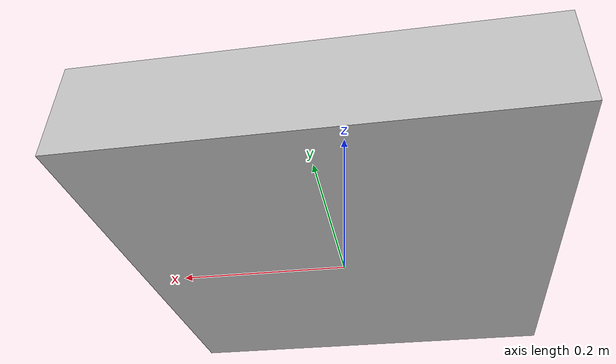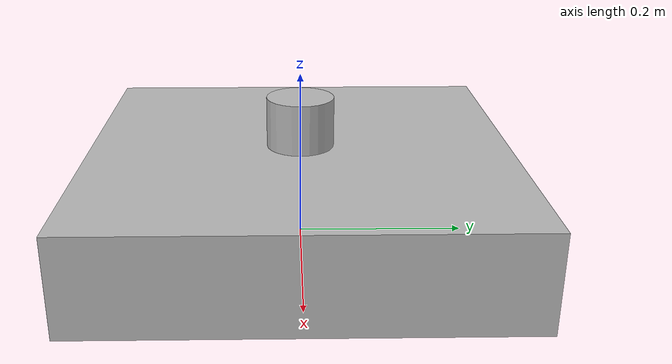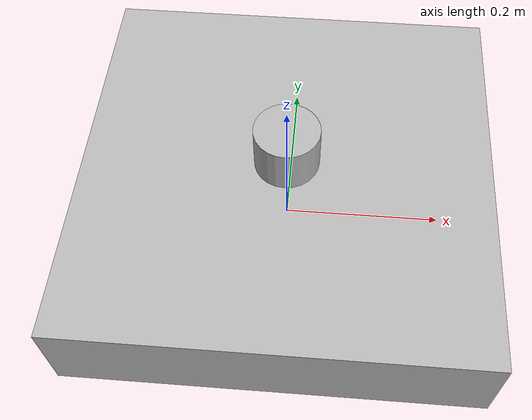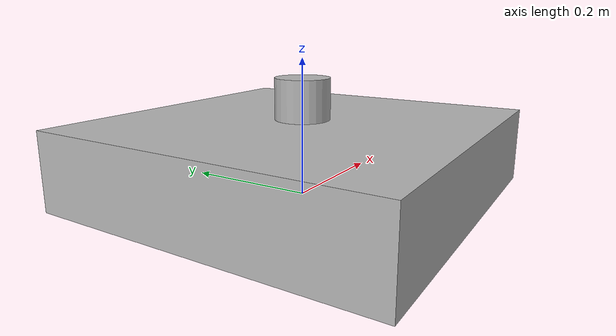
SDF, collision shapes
<sdf version='1.6'>
  <model name='asymmetric_quadrotor'>
    <link name='delta/base_link'>
      <pose frame=''>0 0 0 0 -0 0</pose>
      <inertial>
        <pose frame=''>0 0 0 0 -0 0</pose>
        <mass>0.5</mass>
        <inertia>
          <ixx>0.0102411</ixx>
          <ixy>0</ixy>
          <ixz>0</ixz>
          <iyy>0.0102411</iyy>
          <iyz>0</iyz>
          <izz>0.020264</izz>
        </inertia>
      </inertial>
      <collision name='delta/base_link_fixed_joint_lump__delta_collision_collision'>
        <pose frame=''>0 0 0.0565 0 -0 0</pose>
        <geometry>
          <box>
            <size>0.5 0.5 0.113</size>
          </box>
        </geometry>
      </collision>
      <collision name='delta/base_link_fixed_joint_lump__base_collision_collision_1'>
        <pose frame=''>0 0 0.1365 0 -0 0</pose>
        <geometry>
          <cylinder>
            <length>0.073</length>
            <radius>0.04</radius>
          </cylinder>
        </geometry>
      </collision>
      <visual name='delta/base_link_inertia_visual'>
        <pose frame=''>0 0 0 0 -0 0</pose>
        <geometry>
          <mesh>
            <scale>1 1 1</scale>
            <uri>model://rmf_sim/rotors/meshes/delta/delta.dae</uri>
          </mesh>
        </geometry>
      </visual>
      <visual name='delta/base_link_fixed_joint_lump__base_visual_visual_1'>
        <pose frame=''>0 0 0.1 0 -0 1.5707</pose>
        <geometry>
          <mesh>
            <scale>1 1 1</scale>
            <uri>model://lidar_description/meshes/Ouster/ouster.dae</uri>
          </mesh>
        </geometry>
      </visual>
      <velocity_decay/>
      <sensor name='delta_contact_sensor' type='contact'>
        <always_on>1</always_on>
        <contact>
          <collision>delta/base_link_fixed_joint_lump__delta_collision_collision</collision>
          <topic>__default_topic__</topic>
        </contact>
        <plugin name='delta_collision_plugin' filename='libgazebo_ros_bumper.so'>
          <bumperTopicName>delta_contact</bumperTopicName>
          <frameName>world</frameName>
        </plugin>
        <pose frame=''>0 0 0 0 -0 0</pose>
      </sensor>
      <velocity_decay/>
      <sensor name='delta/os1-OS1-64' type='ray'>
        <visualize>0</visualize>
        <update_rate>10</update_rate>
        <ray>
          <scan>
            <horizontal>
              <samples>220</samples>
              <resolution>1</resolution>
              <min_angle>-3.14159</min_angle>
              <max_angle>3.14159</max_angle>
            </horizontal>
            <vertical>
              <samples>64</samples>
              <resolution>1</resolution>
              <min_angle>-0.289917</min_angle>
              <max_angle>0.289917</max_angle>
            </vertical>
          </scan>
          <range>
            <min>0.225</min>
            <max>100</max>
            <resolution>0.03</resolution>
          </range>
        </ray>
        <plugin name='gazebo_ros_laser_controller' filename='libgazebo_ros_lidar.so'>
          <topicName>/os1_points</topicName>
          <frameName>delta/os1</frameName>
          <min_range>0.225</min_range>
          <max_range>100.0</max_range>
          <gaussianNoise>0.008</gaussianNoise>
        </plugin>
        <pose frame=''>0 0 0.1 0 -0 0</pose>
      </sensor>
      <gravity>1</gravity>
      <velocity_decay/>
    </link>
    <link name='delta/imu_link'>
      <pose frame=''>0 0 0 0 -0 0</pose>
      <inertial>
        <pose frame=''>0 0 0 0 -0 0</pose>
        <mass>0.015</mass>
        <inertia>
          <ixx>1e-05</ixx>
          <ixy>0</ixy>
          <ixz>0</ixz>
          <iyy>1e-05</iyy>
          <iyz>0</iyz>
          <izz>1e-05</izz>
        </inertia>
      </inertial>
    </link>
    <joint name='delta/imu_joint' type='revolute'>
      <child>delta/imu_link</child>
      <parent>delta/base_link</parent>
      <axis>
        <xyz>1 0 0</xyz>
        <limit>
          <lower>0</lower>
          <upper>0</upper>
          <effort>0</effort>
          <velocity>0</velocity>
        </limit>
        <dynamics>
          <spring_reference>0</spring_reference>
          <spring_stiffness>0</spring_stiffness>
        </dynamics>
        <use_parent_model_frame>1</use_parent_model_frame>
      </axis>
    </joint>
    <link name='delta/imugt_link'>
      <pose frame=''>0 0 0 0 -0 0</pose>
      <inertial>
        <pose frame=''>0 0 0 0 -0 0</pose>
        <mass>1e-05</mass>
        <inertia>
          <ixx>1e-05</ixx>
          <ixy>0</ixy>
          <ixz>0</ixz>
          <iyy>1e-05</iyy>
          <iyz>0</iyz>
          <izz>1e-05</izz>
        </inertia>
      </inertial>
    </link>
    <joint name='delta/imugt_joint' type='revolute'>
      <child>delta/imugt_link</child>
      <parent>delta/base_link</parent>
      <axis>
        <xyz>1 0 0</xyz>
        <limit>
          <lower>0</lower>
          <upper>0</upper>
          <effort>0</effort>
          <velocity>0</velocity>
        </limit>
        <dynamics>
          <spring_reference>0</spring_reference>
          <spring_stiffness>0</spring_stiffness>
        </dynamics>
        <use_parent_model_frame>1</use_parent_model_frame>
      </axis>
    </joint>
    <link name='delta/odometry_sensor1_link'>
      <pose frame=''>0 0 0 0 -0 0</pose>
      <inertial>
        <pose frame=''>0 0 0 0 -0 0</pose>
        <mass>1e-05</mass>
        <inertia>
          <ixx>1e-05</ixx>
          <ixy>0</ixy>
          <ixz>0</ixz>
          <iyy>1e-05</iyy>
          <iyz>0</iyz>
          <izz>1e-05</izz>
        </inertia>
      </inertial>
    </link>
    <joint name='delta/odometry_sensor1_joint' type='revolute'>
      <child>delta/odometry_sensor1_link</child>
      <parent>delta/base_link</parent>
      <axis>
        <xyz>1 0 0</xyz>
        <limit>
          <lower>0</lower>
          <upper>0</upper>
          <effort>0</effort>
          <velocity>0</velocity>
        </limit>
        <dynamics>
          <spring_reference>0</spring_reference>
          <spring_stiffness>0</spring_stiffness>
        </dynamics>
        <use_parent_model_frame>1</use_parent_model_frame>
      </axis>
    </joint>
    <link name='delta/odometry_sensorgt_link'>
      <pose frame=''>0 0 0 0 -0 0</pose>
      <inertial>
        <pose frame=''>0 0 0 0 -0 0</pose>
        <mass>1e-05</mass>
        <inertia>
          <ixx>1e-05</ixx>
          <ixy>0</ixy>
          <ixz>0</ixz>
          <iyy>1e-05</iyy>
          <iyz>0</iyz>
          <izz>1e-05</izz>
        </inertia>
      </inertial>
    </link>
    <joint name='delta/odometry_sensorgt_joint' type='revolute'>
      <child>delta/odometry_sensorgt_link</child>
      <parent>delta/base_link</parent>
      <axis>
        <xyz>1 0 0</xyz>
        <limit>
          <lower>0</lower>
          <upper>0</upper>
          <effort>0</effort>
          <velocity>0</velocity>
        </limit>
        <dynamics>
          <spring_reference>0</spring_reference>
          <spring_stiffness>0</spring_stiffness>
        </dynamics>
        <use_parent_model_frame>1</use_parent_model_frame>
      </axis>
    </joint>
    <link name='delta/rotor_0'>
      <pose frame=''>0.07 -0.075 0.027 0 -0 0</pose>
      <inertial>
        <pose frame=''>0 0 0 0 -0 0</pose>
        <mass>0.003</mass>
        <inertia>
          <ixx>5.85e-07</ixx>
          <ixy>0</ixy>
          <ixz>0</ixz>
          <iyy>7.045e-06</iyy>
          <iyz>0</iyz>
          <izz>7.585e-06</izz>
        </inertia>
      </inertial>
      <collision name='delta/rotor_0_collision'>
        <pose frame=''>0 0 0 0 -0 0</pose>
        <geometry>
          <cylinder>
            <length>0.005</length>
            <radius>0.053</radius>
          </cylinder>
        </geometry>
        <surface>
          <contact>
            <ode/>
          </contact>
          <friction>
            <ode/>
          </friction>
        </surface>
      </collision>
      <visual name='delta/rotor_0_visual'>
        <pose frame=''>0 0 0 0 -0 0</pose>
        <geometry>
          <mesh>
            <scale>0.053 0.053 0.053</scale>
            <uri>model://rotors_description/meshes/propeller_ccw.dae</uri>
          </mesh>
        </geometry>
        <material>
          <script>
            <name>Gazebo/Red</name>
            <uri>file://media/materials/scripts/gazebo.material</uri>
          </script>
        </material>
      </visual>
      <gravity>1</gravity>
      <velocity_decay/>
    </link>
    <joint name='delta/rotor_0_joint' type='revolute'>
      <child>delta/rotor_0</child>
      <parent>delta/base_link</parent>
      <axis>
        <xyz>0 0 1</xyz>
        <limit>
          <lower>-1e+16</lower>
          <upper>1e+16</upper>
        </limit>
        <dynamics>
          <spring_reference>0</spring_reference>
          <spring_stiffness>0</spring_stiffness>
        </dynamics>
        <use_parent_model_frame>1</use_parent_model_frame>
      </axis>
    </joint>
    <link name='delta/rotor_1'>
      <pose frame=''>-0.06631 0.075627 0.027 0 -0 0</pose>
      <inertial>
        <pose frame=''>0 0 0 0 -0 0</pose>
        <mass>0.003</mass>
        <inertia>
          <ixx>5.85e-07</ixx>
          <ixy>0</ixy>
          <ixz>0</ixz>
          <iyy>7.045e-06</iyy>
          <iyz>0</iyz>
          <izz>7.585e-06</izz>
        </inertia>
      </inertial>
      <collision name='delta/rotor_1_collision'>
        <pose frame=''>0 0 0 0 -0 0</pose>
        <geometry>
          <cylinder>
            <length>0.005</length>
            <radius>0.053</radius>
          </cylinder>
        </geometry>
        <surface>
          <contact>
            <ode/>
          </contact>
          <friction>
            <ode/>
          </friction>
        </surface>
      </collision>
      <visual name='delta/rotor_1_visual'>
        <pose frame=''>0 0 0 0 -0 0</pose>
        <geometry>
          <mesh>
            <scale>0.053 0.053 0.053</scale>
            <uri>model://rotors_description/meshes/propeller_ccw.dae</uri>
          </mesh>
        </geometry>
        <material>
          <script>
            <name>Gazebo/Blue</name>
            <uri>file://media/materials/scripts/gazebo.material</uri>
          </script>
        </material>
      </visual>
      <gravity>1</gravity>
      <velocity_decay/>
    </link>
    <joint name='delta/rotor_1_joint' type='revolute'>
      <child>delta/rotor_1</child>
      <parent>delta/base_link</parent>
      <axis>
        <xyz>0 0 1</xyz>
        <limit>
          <lower>-1e+16</lower>
          <upper>1e+16</upper>
        </limit>
        <dynamics>
          <spring_reference>0</spring_reference>
          <spring_stiffness>0</spring_stiffness>
        </dynamics>
        <use_parent_model_frame>1</use_parent_model_frame>
      </axis>
    </joint>
    <link name='delta/rotor_2'>
      <pose frame=''>0.07 0.075 0.027 0 -0 0</pose>
      <inertial>
        <pose frame=''>0 0 0 0 -0 0</pose>
        <mass>0.003</mass>
        <inertia>
          <ixx>5.85e-07</ixx>
          <ixy>0</ixy>
          <ixz>0</ixz>
          <iyy>7.045e-06</iyy>
          <iyz>0</iyz>
          <izz>7.585e-06</izz>
        </inertia>
      </inertial>
      <collision name='delta/rotor_2_collision'>
        <pose frame=''>0 0 0 0 -0 0</pose>
        <geometry>
          <cylinder>
            <length>0.005</length>
            <radius>0.053</radius>
          </cylinder>
        </geometry>
        <surface>
          <contact>
            <ode/>
          </contact>
          <friction>
            <ode/>
          </friction>
        </surface>
      </collision>
      <visual name='delta/rotor_2_visual'>
        <pose frame=''>0 0 0 0 -0 0</pose>
        <geometry>
          <mesh>
            <scale>0.053 0.053 0.053</scale>
            <uri>model://rotors_description/meshes/propeller_cw.dae</uri>
          </mesh>
        </geometry>
        <material>
          <script>
            <name>Gazebo/Red</name>
            <uri>file://media/materials/scripts/gazebo.material</uri>
          </script>
        </material>
      </visual>
      <gravity>1</gravity>
      <velocity_decay/>
    </link>
    <joint name='delta/rotor_2_joint' type='revolute'>
      <child>delta/rotor_2</child>
      <parent>delta/base_link</parent>
      <axis>
        <xyz>0 0 1</xyz>
        <limit>
          <lower>-1e+16</lower>
          <upper>1e+16</upper>
        </limit>
        <dynamics>
          <spring_reference>0</spring_reference>
          <spring_stiffness>0</spring_stiffness>
        </dynamics>
        <use_parent_model_frame>1</use_parent_model_frame>
      </axis>
    </joint>
    <link name='delta/rotor_3'>
      <pose frame=''>-0.07 -0.075 0.027 0 -0 0</pose>
      <inertial>
        <pose frame=''>0 0 0 0 -0 0</pose>
        <mass>0.003</mass>
        <inertia>
          <ixx>5.85e-07</ixx>
          <ixy>0</ixy>
          <ixz>0</ixz>
          <iyy>7.045e-06</iyy>
          <iyz>0</iyz>
          <izz>7.585e-06</izz>
        </inertia>
      </inertial>
      <collision name='delta/rotor_3_collision'>
        <pose frame=''>0 0 0 0 -0 0</pose>
        <geometry>
          <cylinder>
            <length>0.005</length>
            <radius>0.053</radius>
          </cylinder>
        </geometry>
        <surface>
          <contact>
            <ode/>
          </contact>
          <friction>
            <ode/>
          </friction>
        </surface>
      </collision>
      <visual name='delta/rotor_3_visual'>
        <pose frame=''>0 0 0 0 -0 0</pose>
        <geometry>
          <mesh>
            <scale>0.053 0.053 0.053</scale>
            <uri>model://rotors_description/meshes/propeller_cw.dae</uri>
          </mesh>
        </geometry>
        <material>
          <script>
            <name>Gazebo/Blue</name>
            <uri>file://media/materials/scripts/gazebo.material</uri>
          </script>
        </material>
      </visual>
      <gravity>1</gravity>
      <velocity_decay/>
    </link>
    <joint name='delta/rotor_3_joint' type='revolute'>
      <child>delta/rotor_3</child>
      <parent>delta/base_link</parent>
      <axis>
        <xyz>0 0 1</xyz>
        <limit>
          <lower>-1e+16</lower>
          <upper>1e+16</upper>
        </limit>
        <dynamics>
          <spring_reference>0</spring_reference>
          <spring_stiffness>0</spring_stiffness>
        </dynamics>
        <use_parent_model_frame>1</use_parent_model_frame>
      </axis>
    </joint>
    <plugin name='multirotor_base_plugin' filename='librotors_gazebo_multirotor_base_plugin.so'>
      <robotNamespace>delta</robotNamespace>
      <linkName>delta/base_link</linkName>
      <rotorVelocitySlowdownSim>10</rotorVelocitySlowdownSim>
    </plugin>
    <plugin name='delta_front_right_motor_model' filename='librotors_gazebo_motor_model.so'>
      <robotNamespace>delta</robotNamespace>
      <jointName>delta/rotor_0_joint</jointName>
      <linkName>delta/rotor_0</linkName>
      <turningDirection>ccw</turningDirection>
      <timeConstantUp>0.0125</timeConstantUp>
      <timeConstantDown>0.025</timeConstantDown>
      <maxRotVelocity>2000.0</maxRotVelocity>
      <motorConstant>0.02246</motorConstant>
      <momentConstant>0.016</momentConstant>
      <commandSubTopic>gazebo/command/motor_speed</commandSubTopic>
      <motorNumber>0</motorNumber>
      <rotorDragCoefficient>8.06428e-05</rotorDragCoefficient>
      <rollingMomentCoefficient>1e-06</rollingMomentCoefficient>
      <motorSpeedPubTopic>motor_speed/0</motorSpeedPubTopic>
      <rotorVelocitySlowdownSim>10</rotorVelocitySlowdownSim>
    </plugin>
    <plugin name='delta_front_left_motor_model' filename='librotors_gazebo_motor_model.so'>
      <robotNamespace>delta</robotNamespace>
      <jointName>delta/rotor_2_joint</jointName>
      <linkName>delta/rotor_2</linkName>
      <turningDirection>cw</turningDirection>
      <timeConstantUp>0.0125</timeConstantUp>
      <timeConstantDown>0.025</timeConstantDown>
      <maxRotVelocity>2000.0</maxRotVelocity>
      <motorConstant>0.02246</motorConstant>
      <momentConstant>0.016</momentConstant>
      <commandSubTopic>gazebo/command/motor_speed</commandSubTopic>
      <motorNumber>2</motorNumber>
      <rotorDragCoefficient>8.06428e-05</rotorDragCoefficient>
      <rollingMomentCoefficient>1e-06</rollingMomentCoefficient>
      <motorSpeedPubTopic>motor_speed/2</motorSpeedPubTopic>
      <rotorVelocitySlowdownSim>10</rotorVelocitySlowdownSim>
    </plugin>
    <plugin name='delta_back_left_motor_model' filename='librotors_gazebo_motor_model.so'>
      <robotNamespace>delta</robotNamespace>
      <jointName>delta/rotor_1_joint</jointName>
      <linkName>delta/rotor_1</linkName>
      <turningDirection>ccw</turningDirection>
      <timeConstantUp>0.0125</timeConstantUp>
      <timeConstantDown>0.025</timeConstantDown>
      <maxRotVelocity>2000.0</maxRotVelocity>
      <motorConstant>0.02246</motorConstant>
      <momentConstant>0.016</momentConstant>
      <commandSubTopic>gazebo/command/motor_speed</commandSubTopic>
      <motorNumber>1</motorNumber>
      <rotorDragCoefficient>8.06428e-05</rotorDragCoefficient>
      <rollingMomentCoefficient>1e-06</rollingMomentCoefficient>
      <motorSpeedPubTopic>motor_speed/1</motorSpeedPubTopic>
      <rotorVelocitySlowdownSim>10</rotorVelocitySlowdownSim>
    </plugin>
    <plugin name='delta_back_right_motor_model' filename='librotors_gazebo_motor_model.so'>
      <robotNamespace>delta</robotNamespace>
      <jointName>delta/rotor_3_joint</jointName>
      <linkName>delta/rotor_3</linkName>
      <turningDirection>cw</turningDirection>
      <timeConstantUp>0.0125</timeConstantUp>
      <timeConstantDown>0.025</timeConstantDown>
      <maxRotVelocity>2000.0</maxRotVelocity>
      <motorConstant>0.02246</motorConstant>
      <momentConstant>0.016</momentConstant>
      <commandSubTopic>gazebo/command/motor_speed</commandSubTopic>
      <motorNumber>3</motorNumber>
      <rotorDragCoefficient>8.06428e-05</rotorDragCoefficient>
      <rollingMomentCoefficient>1e-06</rollingMomentCoefficient>
      <motorSpeedPubTopic>motor_speed/3</motorSpeedPubTopic>
      <rotorVelocitySlowdownSim>10</rotorVelocitySlowdownSim>
    </plugin>
    <plugin name='controller_interface' filename='librotors_gazebo_controller_interface.so'>
      <robotNamespace>delta</robotNamespace>
      <commandAttitudeThrustSubTopic>command/attitude</commandAttitudeThrustSubTopic>
      <commandRateThrustSubTopic>command/rate</commandRateThrustSubTopic>
      <commandMotorSpeedSubTopic>command/motor_speed</commandMotorSpeedSubTopic>
      <imuSubTopic>imu</imuSubTopic>
      <motorSpeedCommandPubTopic>gazebo/command/motor_speed</motorSpeedCommandPubTopic>
    </plugin>
    <plugin name='rotors_gazebo_imu_plugin' filename='librotors_gazebo_imu_plugin.so'>
      <robotNamespace>delta</robotNamespace>
      <linkName>delta/imu_link</linkName>
      <imuTopic>imu</imuTopic>
      <gyroscopeNoiseDensity>0.0003394</gyroscopeNoiseDensity>
      <gyroscopeRandomWalk>3.8785e-05</gyroscopeRandomWalk>
      <gyroscopeBiasCorrelationTime>1000.0</gyroscopeBiasCorrelationTime>
      <gyroscopeTurnOnBiasSigma>0.0087</gyroscopeTurnOnBiasSigma>
      <accelerometerNoiseDensity>0.004</accelerometerNoiseDensity>
      <accelerometerRandomWalk>0.006</accelerometerRandomWalk>
      <accelerometerBiasCorrelationTime>300.0</accelerometerBiasCorrelationTime>
      <accelerometerTurnOnBiasSigma>0.196</accelerometerTurnOnBiasSigma>
    </plugin>
    <plugin name='rotors_gazebo_imugt_plugin' filename='librotors_gazebo_imu_plugin.so'>
      <robotNamespace>delta</robotNamespace>
      <linkName>delta/imugt_link</linkName>
      <imuTopic>ground_truth/imu</imuTopic>
      <gyroscopeNoiseDensity>0.0</gyroscopeNoiseDensity>
      <gyroscopeRandomWalk>0.0</gyroscopeRandomWalk>
      <gyroscopeBiasCorrelationTime>1000.0</gyroscopeBiasCorrelationTime>
      <gyroscopeTurnOnBiasSigma>0.0</gyroscopeTurnOnBiasSigma>
      <accelerometerNoiseDensity>0.0</accelerometerNoiseDensity>
      <accelerometerRandomWalk>0.0</accelerometerRandomWalk>
      <accelerometerBiasCorrelationTime>300.0</accelerometerBiasCorrelationTime>
      <accelerometerTurnOnBiasSigma>0.0</accelerometerTurnOnBiasSigma>
    </plugin>
    <plugin name='odometry_sensorgt' filename='librotors_gazebo_odometry_plugin.so'>
      <linkName>delta/odometry_sensorgt_link</linkName>
      <robotNamespace>delta</robotNamespace>
      <poseTopic>ground_truth/pose</poseTopic>
      <poseWithCovarianceTopic>ground_truth/pose_with_covariance</poseWithCovarianceTopic>
      <positionTopic>ground_truth/position</positionTopic>
      <transformTopic>ground_truth/transform</transformTopic>
      <odometryTopic>ground_truth/odometry</odometryTopic>
      <parentFrameId>world</parentFrameId>
      <childFrameId>delta/base_link</childFrameId>
      <measurementDivisor>1</measurementDivisor>
      <measurementDelay>0</measurementDelay>
      <unknownDelay>0.0</unknownDelay>
      <noiseNormalPosition>0 0 0</noiseNormalPosition>
      <noiseNormalQuaternion>0 0 0</noiseNormalQuaternion>
      <noiseNormalLinearVelocity>0 0 0</noiseNormalLinearVelocity>
      <noiseNormalAngularVelocity>0 0 0</noiseNormalAngularVelocity>
      <noiseUniformPosition>0 0 0</noiseUniformPosition>
      <noiseUniformQuaternion>0 0 0</noiseUniformQuaternion>
      <noiseUniformLinearVelocity>0 0 0</noiseUniformLinearVelocity>
      <noiseUniformAngularVelocity>0 0 0</noiseUniformAngularVelocity>
    </plugin>
    <plugin name='odometry_sensor1' filename='librotors_gazebo_odometry_plugin.so'>
      <linkName>delta/odometry_sensor1_link</linkName>
      <robotNamespace>delta</robotNamespace>
      <poseTopic>odometry_sensor1/pose</poseTopic>
      <poseWithCovarianceTopic>odometry_sensor1/pose_with_covariance</poseWithCovarianceTopic>
      <positionTopic>odometry_sensor1/position</positionTopic>
      <transformTopic>odometry_sensor1/transform</transformTopic>
      <odometryTopic>odometry_sensor1/odometry</odometryTopic>
      <parentFrameId>world</parentFrameId>
      <childFrameId>delta/odometry_sensor1</childFrameId>
      <measurementDivisor>1</measurementDivisor>
      <measurementDelay>0</measurementDelay>
      <unknownDelay>0.0</unknownDelay>
      <noiseNormalPosition>0 0 0</noiseNormalPosition>
      <noiseNormalQuaternion>0 0 0</noiseNormalQuaternion>
      <noiseNormalLinearVelocity>0 0 0</noiseNormalLinearVelocity>
      <noiseNormalAngularVelocity>0 0 0</noiseNormalAngularVelocity>
      <noiseUniformPosition>0 0 0</noiseUniformPosition>
      <noiseUniformQuaternion>0 0 0</noiseUniformQuaternion>
      <noiseUniformLinearVelocity>0 0 0</noiseUniformLinearVelocity>
      <noiseUniformAngularVelocity>0 0 0</noiseUniformAngularVelocity>
    </plugin>
    <static>0</static>
    <plugin name='imu_controller' filename='libhector_gazebo_ros_imu.so'>
      <robotNamespace>/</robotNamespace>
      <updateRate>100.0</updateRate>
      <topicName>/os1_cloud_node/imu</topicName>
      <accelDrift>0.005 0.005 0.005</accelDrift>
      <accelGaussianNoise>0.005 0.005 0.005</accelGaussianNoise>
      <rateDrift>0.005 0.005 0.005</rateDrift>
      <rateGaussianNoise>0.005 0.005 0.005</rateGaussianNoise>
      <headingDrift>0.005</headingDrift>
      <headingGaussianNoise>0.005</headingGaussianNoise>
      <bodyName>delta/base_link</bodyName>
      <xyzOffset>-0.006253 0.011775 -0.107645</xyzOffset>
      <rpyOffset>0 -0 0</rpyOffset>
    </plugin>
  </model>
</sdf>
